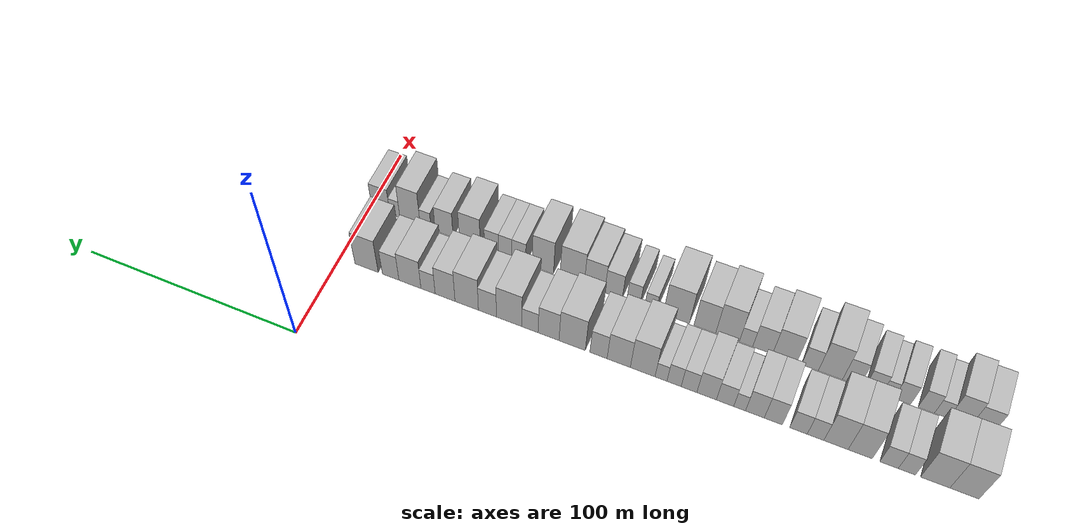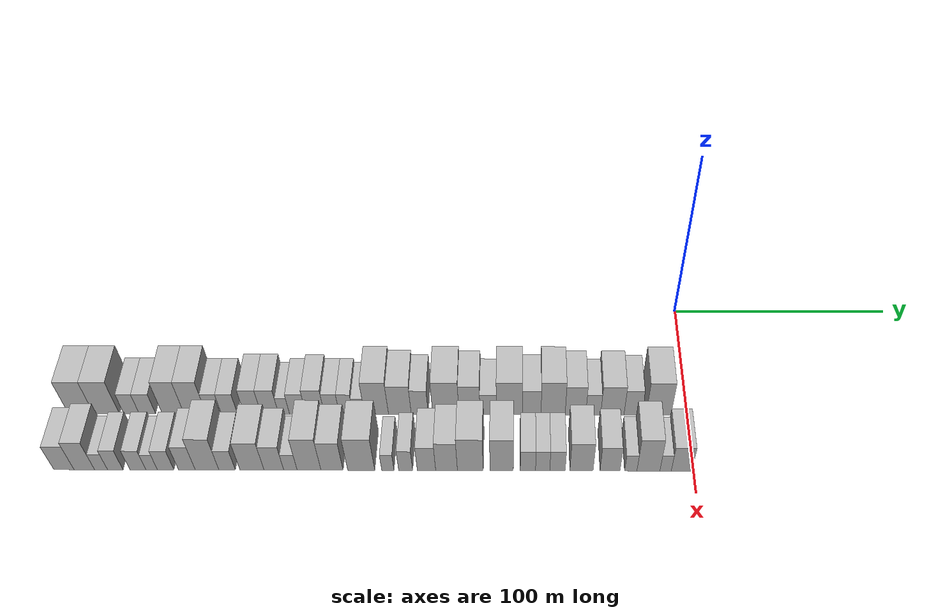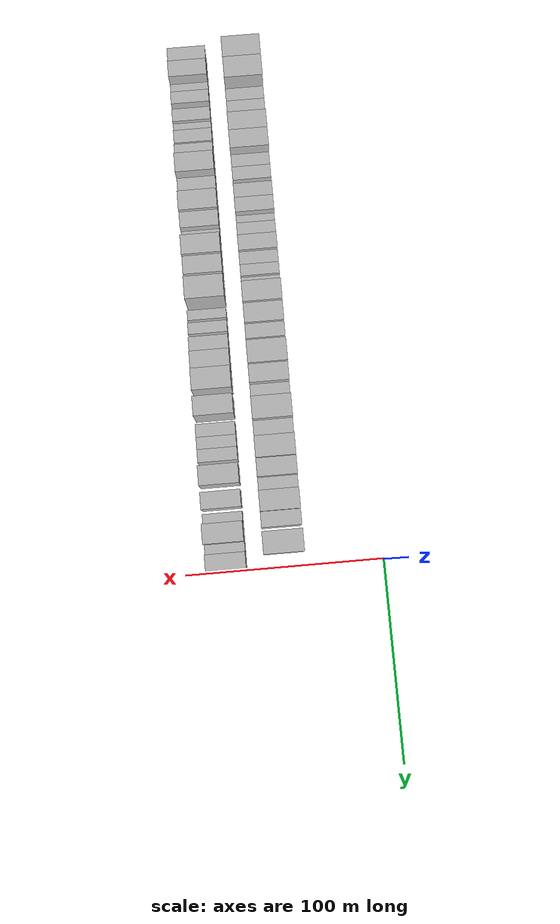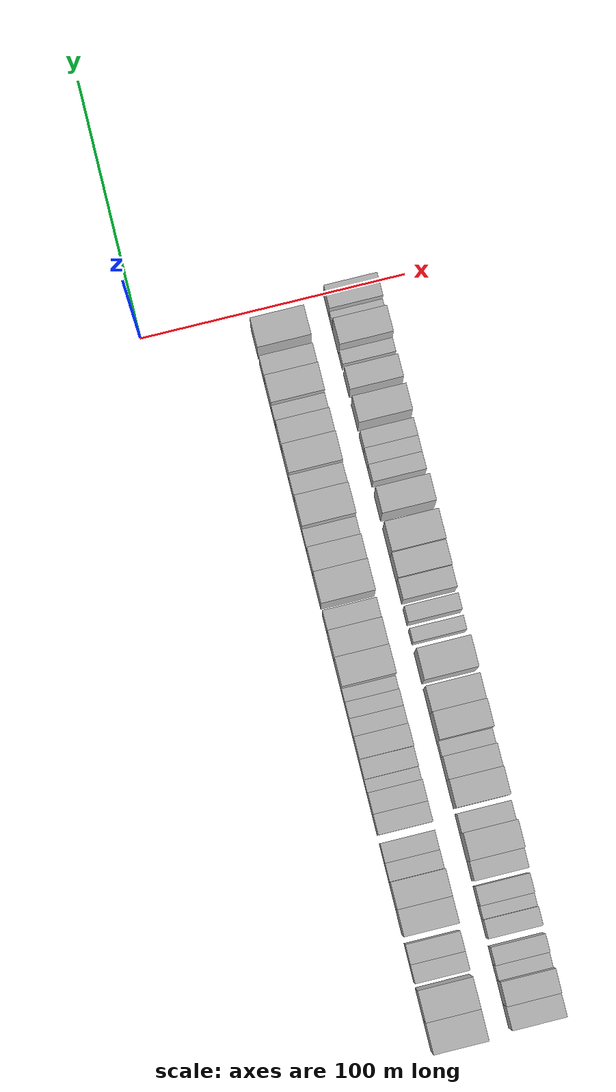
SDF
<sdf version="1.6">
 <world name="default">
  <model name="building_1">
   <static>1</static>
   <pose>50.0000 -270.3521 0 0.000000 0.000000 0.000000</pose>
   <link name="link">
    <pose>0 0 12.00 0 0 0</pose>
    <collision name="collision"><geometry><box><size>20.0000 11.2958 24.0000</size></box></geometry></collision>
    <visual name="visual">
     <cast_shadows>0</cast_shadows>
     <geometry><box><size>20.0000 11.2958 24.0000</size></box></geometry>
     <material>
      <script>
       <uri>model://HANNAS_wall/materials/scripts</uri>
       <uri>model://HANNAS_wall/materials/textures</uri>
       <name>vrc/HANNAS_wall</name>
      </script>
     </material>
    </visual>
   </link>
  </model>
  <model name="building_2">
   <static>1</static>
   <pose>50.0000 -258.9503 0 0.000000 0.000000 0.000000</pose>
   <link name="link">
    <pose>0 0 12.00 0 0 0</pose>
    <collision name="collision"><geometry><box><size>20.0000 11.5078 24.0000</size></box></geometry></collision>
    <visual name="visual">
     <cast_shadows>0</cast_shadows>
     <geometry><box><size>20.0000 11.5078 24.0000</size></box></geometry>
     <material>
      <script>
       <uri>model://HANNAS_wall/materials/scripts</uri>
       <uri>model://HANNAS_wall/materials/textures</uri>
       <name>vrc/HANNAS_wall</name>
      </script>
     </material>
    </visual>
   </link>
  </model>
  <model name="building_3">
   <static>1</static>
   <pose>50.0000 -247.7946 0 0.000000 0.000000 0.000000</pose>
   <link name="link">
    <pose>0 0 7.50 0 0 0</pose>
    <collision name="collision"><geometry><box><size>20.0000 6.8036 15.0000</size></box></geometry></collision>
    <visual name="visual">
     <cast_shadows>0</cast_shadows>
     <geometry><box><size>20.0000 6.8036 15.0000</size></box></geometry>
     <material>
      <script>
       <uri>model://HANNAS_wall/materials/scripts</uri>
       <uri>model://HANNAS_wall/materials/textures</uri>
       <name>vrc/HANNAS_wall</name>
      </script>
     </material>
    </visual>
   </link>
  </model>
  <model name="building_4">
   <static>1</static>
   <pose>50.0000 -240.7317 0 0.000000 0.000000 0.000000</pose>
   <link name="link">
    <pose>0 0 7.50 0 0 0</pose>
    <collision name="collision"><geometry><box><size>20.0000 7.3222 15.0000</size></box></geometry></collision>
    <visual name="visual">
     <cast_shadows>0</cast_shadows>
     <geometry><box><size>20.0000 7.3222 15.0000</size></box></geometry>
     <material>
      <script>
       <uri>model://HANNAS_wall/materials/scripts</uri>
       <uri>model://HANNAS_wall/materials/textures</uri>
       <name>vrc/HANNAS_wall</name>
      </script>
     </material>
    </visual>
   </link>
  </model>
  <model name="building_5">
   <static>1</static>
   <pose>50.0000 -229.2101 0 0.000000 0.000000 0.000000</pose>
   <link name="link">
    <pose>0 0 12.00 0 0 0</pose>
    <collision name="collision"><geometry><box><size>20.0000 9.7211 24.0000</size></box></geometry></collision>
    <visual name="visual">
     <cast_shadows>0</cast_shadows>
     <geometry><box><size>20.0000 9.7211 24.0000</size></box></geometry>
     <material>
      <script>
       <uri>model://HANNAS_wall/materials/scripts</uri>
       <uri>model://HANNAS_wall/materials/textures</uri>
       <name>vrc/HANNAS_wall</name>
      </script>
     </material>
    </visual>
   </link>
  </model>
  <model name="building_6">
   <static>1</static>
   <pose>50.0000 -219.4116 0 0.000000 0.000000 0.000000</pose>
   <link name="link">
    <pose>0 0 12.00 0 0 0</pose>
    <collision name="collision"><geometry><box><size>20.0000 9.8758 24.0000</size></box></geometry></collision>
    <visual name="visual">
     <cast_shadows>0</cast_shadows>
     <geometry><box><size>20.0000 9.8758 24.0000</size></box></geometry>
     <material>
      <script>
       <uri>model://HANNAS_wall/materials/scripts</uri>
       <uri>model://HANNAS_wall/materials/textures</uri>
       <name>vrc/HANNAS_wall</name>
      </script>
     </material>
    </visual>
   </link>
  </model>
  <model name="building_7">
   <static>1</static>
   <pose>50.0000 -211.0947 0 0.000000 0.000000 0.000000</pose>
   <link name="link">
    <pose>0 0 7.50 0 0 0</pose>
    <collision name="collision"><geometry><box><size>20.0000 6.7581 15.0000</size></box></geometry></collision>
    <visual name="visual">
     <cast_shadows>0</cast_shadows>
     <geometry><box><size>20.0000 6.7581 15.0000</size></box></geometry>
     <material>
      <script>
       <uri>model://HANNAS_wall/materials/scripts</uri>
       <uri>model://HANNAS_wall/materials/textures</uri>
       <name>vrc/HANNAS_wall</name>
      </script>
     </material>
    </visual>
   </link>
  </model>
  <model name="building_8">
   <static>1</static>
   <pose>50.0000 -204.1174 0 0.000000 0.000000 0.000000</pose>
   <link name="link">
    <pose>0 0 7.50 0 0 0</pose>
    <collision name="collision"><geometry><box><size>20.0000 7.1965 15.0000</size></box></geometry></collision>
    <visual name="visual">
     <cast_shadows>0</cast_shadows>
     <geometry><box><size>20.0000 7.1965 15.0000</size></box></geometry>
     <material>
      <script>
       <uri>model://HANNAS_wall/materials/scripts</uri>
       <uri>model://HANNAS_wall/materials/textures</uri>
       <name>vrc/HANNAS_wall</name>
      </script>
     </material>
    </visual>
   </link>
  </model>
  <model name="building_9">
   <static>1</static>
   <pose>50.0000 -193.7604 0 0.000000 0.000000 0.000000</pose>
   <link name="link">
    <pose>0 0 9.00 0 0 0</pose>
    <collision name="collision"><geometry><box><size>20.0000 7.5175 18.0000</size></box></geometry></collision>
    <visual name="visual">
     <cast_shadows>0</cast_shadows>
     <geometry><box><size>20.0000 7.5175 18.0000</size></box></geometry>
     <material>
      <script>
       <uri>model://HANNAS_wall/materials/scripts</uri>
       <uri>model://HANNAS_wall/materials/textures</uri>
       <name>vrc/HANNAS_wall</name>
      </script>
     </material>
    </visual>
   </link>
  </model>
  <model name="building_10">
   <static>1</static>
   <pose>50.0000 -186.0805 0 0.000000 0.000000 0.000000</pose>
   <link name="link">
    <pose>0 0 9.00 0 0 0</pose>
    <collision name="collision"><geometry><box><size>20.0000 7.8422 18.0000</size></box></geometry></collision>
    <visual name="visual">
     <cast_shadows>0</cast_shadows>
     <geometry><box><size>20.0000 7.8422 18.0000</size></box></geometry>
     <material>
      <script>
       <uri>model://HANNAS_wall/materials/scripts</uri>
       <uri>model://HANNAS_wall/materials/textures</uri>
       <name>vrc/HANNAS_wall</name>
      </script>
     </material>
    </visual>
   </link>
  </model>
  <model name="building_11">
   <static>1</static>
   <pose>50.0000 -179.7081 0 0.000000 0.000000 0.000000</pose>
   <link name="link">
    <pose>0 0 6.00 0 0 0</pose>
    <collision name="collision"><geometry><box><size>20.0000 4.9028 12.0000</size></box></geometry></collision>
    <visual name="visual">
     <cast_shadows>0</cast_shadows>
     <geometry><box><size>20.0000 4.9028 12.0000</size></box></geometry>
     <material>
      <script>
       <uri>model://HANNAS_wall/materials/scripts</uri>
       <uri>model://HANNAS_wall/materials/textures</uri>
       <name>vrc/HANNAS_wall</name>
      </script>
     </material>
    </visual>
   </link>
  </model>
  <model name="building_12">
   <static>1</static>
   <pose>50.0000 -173.6037 0 0.000000 0.000000 0.000000</pose>
   <link name="link">
    <pose>0 0 7.50 0 0 0</pose>
    <collision name="collision"><geometry><box><size>20.0000 7.3061 15.0000</size></box></geometry></collision>
    <visual name="visual">
     <cast_shadows>0</cast_shadows>
     <geometry><box><size>20.0000 7.3061 15.0000</size></box></geometry>
     <material>
      <script>
       <uri>model://HANNAS_wall/materials/scripts</uri>
       <uri>model://HANNAS_wall/materials/textures</uri>
       <name>vrc/HANNAS_wall</name>
      </script>
     </material>
    </visual>
   </link>
  </model>
  <model name="building_13">
   <static>1</static>
   <pose>50.0000 -165.8110 0 0.000000 0.000000 0.000000</pose>
   <link name="link">
    <pose>0 0 9.00 0 0 0</pose>
    <collision name="collision"><geometry><box><size>20.0000 8.2792 18.0000</size></box></geometry></collision>
    <visual name="visual">
     <cast_shadows>0</cast_shadows>
     <geometry><box><size>20.0000 8.2792 18.0000</size></box></geometry>
     <material>
      <script>
       <uri>model://HANNAS_wall/materials/scripts</uri>
       <uri>model://HANNAS_wall/materials/textures</uri>
       <name>vrc/HANNAS_wall</name>
      </script>
     </material>
    </visual>
   </link>
  </model>
  <model name="building_14">
   <static>1</static>
   <pose>50.0000 -158.3307 0 0.000000 0.000000 0.000000</pose>
   <link name="link">
    <pose>0 0 7.50 0 0 0</pose>
    <collision name="collision"><geometry><box><size>20.0000 6.6814 15.0000</size></box></geometry></collision>
    <visual name="visual">
     <cast_shadows>0</cast_shadows>
     <geometry><box><size>20.0000 6.6814 15.0000</size></box></geometry>
     <material>
      <script>
       <uri>model://HANNAS_wall/materials/scripts</uri>
       <uri>model://HANNAS_wall/materials/textures</uri>
       <name>vrc/HANNAS_wall</name>
      </script>
     </material>
    </visual>
   </link>
  </model>
  <model name="building_15">
   <static>1</static>
   <pose>50.0000 -151.9462 0 0.000000 0.000000 0.000000</pose>
   <link name="link">
    <pose>0 0 7.50 0 0 0</pose>
    <collision name="collision"><geometry><box><size>20.0000 6.0876 15.0000</size></box></geometry></collision>
    <visual name="visual">
     <cast_shadows>0</cast_shadows>
     <geometry><box><size>20.0000 6.0876 15.0000</size></box></geometry>
     <material>
      <script>
       <uri>model://HANNAS_wall/materials/scripts</uri>
       <uri>model://HANNAS_wall/materials/textures</uri>
       <name>vrc/HANNAS_wall</name>
      </script>
     </material>
    </visual>
   </link>
  </model>
  <model name="building_16">
   <static>1</static>
   <pose>50.0000 -146.3313 0 0.000000 0.000000 0.000000</pose>
   <link name="link">
    <pose>0 0 6.00 0 0 0</pose>
    <collision name="collision"><geometry><box><size>20.0000 5.1424 12.0000</size></box></geometry></collision>
    <visual name="visual">
     <cast_shadows>0</cast_shadows>
     <geometry><box><size>20.0000 5.1424 12.0000</size></box></geometry>
     <material>
      <script>
       <uri>model://HANNAS_wall/materials/scripts</uri>
       <uri>model://HANNAS_wall/materials/textures</uri>
       <name>vrc/HANNAS_wall</name>
      </script>
     </material>
    </visual>
   </link>
  </model>
  <model name="building_17">
   <static>1</static>
   <pose>50.0000 -138.4068 0 0.000000 0.000000 0.000000</pose>
   <link name="link">
    <pose>0 0 12.00 0 0 0</pose>
    <collision name="collision"><geometry><box><size>20.0000 10.7065 24.0000</size></box></geometry></collision>
    <visual name="visual">
     <cast_shadows>0</cast_shadows>
     <geometry><box><size>20.0000 10.7065 24.0000</size></box></geometry>
     <material>
      <script>
       <uri>model://HANNAS_wall/materials/scripts</uri>
       <uri>model://HANNAS_wall/materials/textures</uri>
       <name>vrc/HANNAS_wall</name>
      </script>
     </material>
    </visual>
   </link>
  </model>
  <model name="building_18">
   <static>1</static>
   <pose>50.0000 -127.9700 0 0.000000 0.000000 0.000000</pose>
   <link name="link">
    <pose>0 0 10.50 0 0 0</pose>
    <collision name="collision"><geometry><box><size>20.0000 10.1671 21.0000</size></box></geometry></collision>
    <visual name="visual">
     <cast_shadows>0</cast_shadows>
     <geometry><box><size>20.0000 10.1671 21.0000</size></box></geometry>
     <material>
      <script>
       <uri>model://HANNAS_wall/materials/scripts</uri>
       <uri>model://HANNAS_wall/materials/textures</uri>
       <name>vrc/HANNAS_wall</name>
      </script>
     </material>
    </visual>
   </link>
  </model>
  <model name="building_19">
   <static>1</static>
   <pose>50.0000 -119.1041 0 0.000000 0.000000 0.000000</pose>
   <link name="link">
    <pose>0 0 9.00 0 0 0</pose>
    <collision name="collision"><geometry><box><size>20.0000 7.5647 18.0000</size></box></geometry></collision>
    <visual name="visual">
     <cast_shadows>0</cast_shadows>
     <geometry><box><size>20.0000 7.5647 18.0000</size></box></geometry>
     <material>
      <script>
       <uri>model://HANNAS_wall/materials/scripts</uri>
       <uri>model://HANNAS_wall/materials/textures</uri>
       <name>vrc/HANNAS_wall</name>
      </script>
     </material>
    </visual>
   </link>
  </model>
  <model name="building_20">
   <static>1</static>
   <pose>50.0000 -107.4591 0 0.000000 0.000000 0.000000</pose>
   <link name="link">
    <pose>0 0 12.00 0 0 0</pose>
    <collision name="collision"><geometry><box><size>20.0000 11.7253 24.0000</size></box></geometry></collision>
    <visual name="visual">
     <cast_shadows>0</cast_shadows>
     <geometry><box><size>20.0000 11.7253 24.0000</size></box></geometry>
     <material>
      <script>
       <uri>model://HANNAS_wall/materials/scripts</uri>
       <uri>model://HANNAS_wall/materials/textures</uri>
       <name>vrc/HANNAS_wall</name>
      </script>
     </material>
    </visual>
   </link>
  </model>
  <model name="building_21">
   <static>1</static>
   <pose>50.0000 -96.9045 0 0.000000 0.000000 0.000000</pose>
   <link name="link">
    <pose>0 0 10.50 0 0 0</pose>
    <collision name="collision"><geometry><box><size>20.0000 9.3840 21.0000</size></box></geometry></collision>
    <visual name="visual">
     <cast_shadows>0</cast_shadows>
     <geometry><box><size>20.0000 9.3840 21.0000</size></box></geometry>
     <material>
      <script>
       <uri>model://HANNAS_wall/materials/scripts</uri>
       <uri>model://HANNAS_wall/materials/textures</uri>
       <name>vrc/HANNAS_wall</name>
      </script>
     </material>
    </visual>
   </link>
  </model>
  <model name="building_22">
   <static>1</static>
   <pose>50.0000 -88.5318 0 0.000000 0.000000 0.000000</pose>
   <link name="link">
    <pose>0 0 7.50 0 0 0</pose>
    <collision name="collision"><geometry><box><size>20.0000 7.3615 15.0000</size></box></geometry></collision>
    <visual name="visual">
     <cast_shadows>0</cast_shadows>
     <geometry><box><size>20.0000 7.3615 15.0000</size></box></geometry>
     <material>
      <script>
       <uri>model://HANNAS_wall/materials/scripts</uri>
       <uri>model://HANNAS_wall/materials/textures</uri>
       <name>vrc/HANNAS_wall</name>
      </script>
     </material>
    </visual>
   </link>
  </model>
  <model name="building_23">
   <static>1</static>
   <pose>50.0000 -79.0962 0 0.000000 0.000000 0.000000</pose>
   <link name="link">
    <pose>0 0 12.00 0 0 0</pose>
    <collision name="collision"><geometry><box><size>20.0000 11.5096 24.0000</size></box></geometry></collision>
    <visual name="visual">
     <cast_shadows>0</cast_shadows>
     <geometry><box><size>20.0000 11.5096 24.0000</size></box></geometry>
     <material>
      <script>
       <uri>model://HANNAS_wall/materials/scripts</uri>
       <uri>model://HANNAS_wall/materials/textures</uri>
       <name>vrc/HANNAS_wall</name>
      </script>
     </material>
    </visual>
   </link>
  </model>
  <model name="building_24">
   <static>1</static>
   <pose>50.0000 -69.2204 0 0.000000 0.000000 0.000000</pose>
   <link name="link">
    <pose>0 0 9.00 0 0 0</pose>
    <collision name="collision"><geometry><box><size>20.0000 8.2421 18.0000</size></box></geometry></collision>
    <visual name="visual">
     <cast_shadows>0</cast_shadows>
     <geometry><box><size>20.0000 8.2421 18.0000</size></box></geometry>
     <material>
      <script>
       <uri>model://HANNAS_wall/materials/scripts</uri>
       <uri>model://HANNAS_wall/materials/textures</uri>
       <name>vrc/HANNAS_wall</name>
      </script>
     </material>
    </visual>
   </link>
  </model>
  <model name="building_25">
   <static>1</static>
   <pose>50.0000 -59.6992 0 0.000000 0.000000 0.000000</pose>
   <link name="link">
    <pose>0 0 12.00 0 0 0</pose>
    <collision name="collision"><geometry><box><size>20.0000 10.8002 24.0000</size></box></geometry></collision>
    <visual name="visual">
     <cast_shadows>0</cast_shadows>
     <geometry><box><size>20.0000 10.8002 24.0000</size></box></geometry>
     <material>
      <script>
       <uri>model://HANNAS_wall/materials/scripts</uri>
       <uri>model://HANNAS_wall/materials/textures</uri>
       <name>vrc/HANNAS_wall</name>
      </script>
     </material>
    </visual>
   </link>
  </model>
  <model name="building_26">
   <static>1</static>
   <pose>50.0000 -49.6911 0 0.000000 0.000000 0.000000</pose>
   <link name="link">
    <pose>0 0 10.50 0 0 0</pose>
    <collision name="collision"><geometry><box><size>20.0000 9.2159 21.0000</size></box></geometry></collision>
    <visual name="visual">
     <cast_shadows>0</cast_shadows>
     <geometry><box><size>20.0000 9.2159 21.0000</size></box></geometry>
     <material>
      <script>
       <uri>model://HANNAS_wall/materials/scripts</uri>
       <uri>model://HANNAS_wall/materials/textures</uri>
       <name>vrc/HANNAS_wall</name>
      </script>
     </material>
    </visual>
   </link>
  </model>
  <model name="building_27">
   <static>1</static>
   <pose>50.0000 -41.7591 0 0.000000 0.000000 0.000000</pose>
   <link name="link">
    <pose>0 0 7.50 0 0 0</pose>
    <collision name="collision"><geometry><box><size>20.0000 6.6481 15.0000</size></box></geometry></collision>
    <visual name="visual">
     <cast_shadows>0</cast_shadows>
     <geometry><box><size>20.0000 6.6481 15.0000</size></box></geometry>
     <material>
      <script>
       <uri>model://HANNAS_wall/materials/scripts</uri>
       <uri>model://HANNAS_wall/materials/textures</uri>
       <name>vrc/HANNAS_wall</name>
      </script>
     </material>
    </visual>
   </link>
  </model>
  <model name="building_28">
   <static>1</static>
   <pose>50.0000 -33.2414 0 0.000000 0.000000 0.000000</pose>
   <link name="link">
    <pose>0 0 10.50 0 0 0</pose>
    <collision name="collision"><geometry><box><size>20.0000 10.3874 21.0000</size></box></geometry></collision>
    <visual name="visual">
     <cast_shadows>0</cast_shadows>
     <geometry><box><size>20.0000 10.3874 21.0000</size></box></geometry>
     <material>
      <script>
       <uri>model://HANNAS_wall/materials/scripts</uri>
       <uri>model://HANNAS_wall/materials/textures</uri>
       <name>vrc/HANNAS_wall</name>
      </script>
     </material>
    </visual>
   </link>
  </model>
  <model name="building_29">
   <static>1</static>
   <pose>50.0000 -24.1255 0 0.000000 0.000000 0.000000</pose>
   <link name="link">
    <pose>0 0 9.00 0 0 0</pose>
    <collision name="collision"><geometry><box><size>20.0000 7.8444 18.0000</size></box></geometry></collision>
    <visual name="visual">
     <cast_shadows>0</cast_shadows>
     <geometry><box><size>20.0000 7.8444 18.0000</size></box></geometry>
     <material>
      <script>
       <uri>model://HANNAS_wall/materials/scripts</uri>
       <uri>model://HANNAS_wall/materials/textures</uri>
       <name>vrc/HANNAS_wall</name>
      </script>
     </material>
    </visual>
   </link>
  </model>
  <model name="building_30">
   <static>1</static>
   <pose>50.0000 -12.6385 0 0.000000 0.000000 0.000000</pose>
   <link name="link">
    <pose>0 0 12.00 0 0 0</pose>
    <collision name="collision"><geometry><box><size>20.0000 11.1297 24.0000</size></box></geometry></collision>
    <visual name="visual">
     <cast_shadows>0</cast_shadows>
     <geometry><box><size>20.0000 11.1297 24.0000</size></box></geometry>
     <material>
      <script>
       <uri>model://HANNAS_wall/materials/scripts</uri>
       <uri>model://HANNAS_wall/materials/textures</uri>
       <name>vrc/HANNAS_wall</name>
      </script>
     </material>
    </visual>
   </link>
  </model>
  <model name="building_62">
   <static>1</static>
   <pose>79.0000 -270.6561 0 0.000000 0.000000 0.000000</pose>
   <link name="link">
    <pose>0 0 9.00 0 0 0</pose>
    <collision name="collision"><geometry><box><size>20.0000 8.6878 18.0000</size></box></geometry></collision>
    <visual name="visual">
     <cast_shadows>0</cast_shadows>
     <geometry><box><size>20.0000 8.6878 18.0000</size></box></geometry>
     <material>
      <script>
       <uri>model://HANNAS_wall/materials/scripts</uri>
       <uri>model://HANNAS_wall/materials/textures</uri>
       <name>vrc/HANNAS_wall</name>
      </script>
     </material>
    </visual>
   </link>
  </model>
  <model name="building_63">
   <static>1</static>
   <pose>79.0000 -261.8974 0 0.000000 0.000000 0.000000</pose>
   <link name="link">
    <pose>0 0 10.50 0 0 0</pose>
    <collision name="collision"><geometry><box><size>20.0000 8.8296 21.0000</size></box></geometry></collision>
    <visual name="visual">
     <cast_shadows>0</cast_shadows>
     <geometry><box><size>20.0000 8.8296 21.0000</size></box></geometry>
     <material>
      <script>
       <uri>model://HANNAS_wall/materials/scripts</uri>
       <uri>model://HANNAS_wall/materials/textures</uri>
       <name>vrc/HANNAS_wall</name>
      </script>
     </material>
    </visual>
   </link>
  </model>
  <model name="building_64">
   <static>1</static>
   <pose>79.0000 -254.6926 0 0.000000 0.000000 0.000000</pose>
   <link name="link">
    <pose>0 0 6.00 0 0 0</pose>
    <collision name="collision"><geometry><box><size>20.0000 5.5800 12.0000</size></box></geometry></collision>
    <visual name="visual">
     <cast_shadows>0</cast_shadows>
     <geometry><box><size>20.0000 5.5800 12.0000</size></box></geometry>
     <material>
      <script>
       <uri>model://HANNAS_wall/materials/scripts</uri>
       <uri>model://HANNAS_wall/materials/textures</uri>
       <name>vrc/HANNAS_wall</name>
      </script>
     </material>
    </visual>
   </link>
  </model>
  <model name="building_65">
   <static>1</static>
   <pose>79.0000 -248.5726 0 0.000000 0.000000 0.000000</pose>
   <link name="link">
    <pose>0 0 7.50 0 0 0</pose>
    <collision name="collision"><geometry><box><size>20.0000 6.6600 15.0000</size></box></geometry></collision>
    <visual name="visual">
     <cast_shadows>0</cast_shadows>
     <geometry><box><size>20.0000 6.6600 15.0000</size></box></geometry>
     <material>
      <script>
       <uri>model://HANNAS_wall/materials/scripts</uri>
       <uri>model://HANNAS_wall/materials/textures</uri>
       <name>vrc/HANNAS_wall</name>
      </script>
     </material>
    </visual>
   </link>
  </model>
  <model name="building_66">
   <static>1</static>
   <pose>79.0000 -238.7857 0 0.000000 0.000000 0.000000</pose>
   <link name="link">
    <pose>0 0 7.50 0 0 0</pose>
    <collision name="collision"><geometry><box><size>20.0000 6.9138 15.0000</size></box></geometry></collision>
    <visual name="visual">
     <cast_shadows>0</cast_shadows>
     <geometry><box><size>20.0000 6.9138 15.0000</size></box></geometry>
     <material>
      <script>
       <uri>model://HANNAS_wall/materials/scripts</uri>
       <uri>model://HANNAS_wall/materials/textures</uri>
       <name>vrc/HANNAS_wall</name>
      </script>
     </material>
    </visual>
   </link>
  </model>
  <model name="building_67">
   <static>1</static>
   <pose>79.0000 -232.8735 0 0.000000 0.000000 0.000000</pose>
   <link name="link">
    <pose>0 0 6.00 0 0 0</pose>
    <collision name="collision"><geometry><box><size>20.0000 4.9106 12.0000</size></box></geometry></collision>
    <visual name="visual">
     <cast_shadows>0</cast_shadows>
     <geometry><box><size>20.0000 4.9106 12.0000</size></box></geometry>
     <material>
      <script>
       <uri>model://HANNAS_wall/materials/scripts</uri>
       <uri>model://HANNAS_wall/materials/textures</uri>
       <name>vrc/HANNAS_wall</name>
      </script>
     </material>
    </visual>
   </link>
  </model>
  <model name="building_68">
   <static>1</static>
   <pose>79.0000 -226.8763 0 0.000000 0.000000 0.000000</pose>
   <link name="link">
    <pose>0 0 7.50 0 0 0</pose>
    <collision name="collision"><geometry><box><size>20.0000 7.0837 15.0000</size></box></geometry></collision>
    <visual name="visual">
     <cast_shadows>0</cast_shadows>
     <geometry><box><size>20.0000 7.0837 15.0000</size></box></geometry>
     <material>
      <script>
       <uri>model://HANNAS_wall/materials/scripts</uri>
       <uri>model://HANNAS_wall/materials/textures</uri>
       <name>vrc/HANNAS_wall</name>
      </script>
     </material>
    </visual>
   </link>
  </model>
  <model name="building_69">
   <static>1</static>
   <pose>79.0000 -217.7282 0 0.000000 0.000000 0.000000</pose>
   <link name="link">
    <pose>0 0 9.00 0 0 0</pose>
    <collision name="collision"><geometry><box><size>20.0000 7.2126 18.0000</size></box></geometry></collision>
    <visual name="visual">
     <cast_shadows>0</cast_shadows>
     <geometry><box><size>20.0000 7.2126 18.0000</size></box></geometry>
     <material>
      <script>
       <uri>model://HANNAS_wall/materials/scripts</uri>
       <uri>model://HANNAS_wall/materials/textures</uri>
       <name>vrc/HANNAS_wall</name>
      </script>
     </material>
    </visual>
   </link>
  </model>
  <model name="building_70">
   <static>1</static>
   <pose>79.0000 -209.0349 0 0.000000 0.000000 0.000000</pose>
   <link name="link">
    <pose>0 0 12.00 0 0 0</pose>
    <collision name="collision"><geometry><box><size>20.0000 10.1741 24.0000</size></box></geometry></collision>
    <visual name="visual">
     <cast_shadows>0</cast_shadows>
     <geometry><box><size>20.0000 10.1741 24.0000</size></box></geometry>
     <material>
      <script>
       <uri>model://HANNAS_wall/materials/scripts</uri>
       <uri>model://HANNAS_wall/materials/textures</uri>
       <name>vrc/HANNAS_wall</name>
      </script>
     </material>
    </visual>
   </link>
  </model>
  <model name="building_71">
   <static>1</static>
   <pose>79.0000 -200.4182 0 0.000000 0.000000 0.000000</pose>
   <link name="link">
    <pose>0 0 7.50 0 0 0</pose>
    <collision name="collision"><geometry><box><size>20.0000 7.0592 15.0000</size></box></geometry></collision>
    <visual name="visual">
     <cast_shadows>0</cast_shadows>
     <geometry><box><size>20.0000 7.0592 15.0000</size></box></geometry>
     <material>
      <script>
       <uri>model://HANNAS_wall/materials/scripts</uri>
       <uri>model://HANNAS_wall/materials/textures</uri>
       <name>vrc/HANNAS_wall</name>
      </script>
     </material>
    </visual>
   </link>
  </model>
  <model name="building_72">
   <static>1</static>
   <pose>79.0000 -189.7333 0 0.000000 0.000000 0.000000</pose>
   <link name="link">
    <pose>0 0 10.50 0 0 0</pose>
    <collision name="collision"><geometry><box><size>20.0000 10.3107 21.0000</size></box></geometry></collision>
    <visual name="visual">
     <cast_shadows>0</cast_shadows>
     <geometry><box><size>20.0000 10.3107 21.0000</size></box></geometry>
     <material>
      <script>
       <uri>model://HANNAS_wall/materials/scripts</uri>
       <uri>model://HANNAS_wall/materials/textures</uri>
       <name>vrc/HANNAS_wall</name>
      </script>
     </material>
    </visual>
   </link>
  </model>
  <model name="building_73">
   <static>1</static>
   <pose>79.0000 -180.3293 0 0.000000 0.000000 0.000000</pose>
   <link name="link">
    <pose>0 0 9.00 0 0 0</pose>
    <collision name="collision"><geometry><box><size>20.0000 8.4972 18.0000</size></box></geometry></collision>
    <visual name="visual">
     <cast_shadows>0</cast_shadows>
     <geometry><box><size>20.0000 8.4972 18.0000</size></box></geometry>
     <material>
      <script>
       <uri>model://HANNAS_wall/materials/scripts</uri>
       <uri>model://HANNAS_wall/materials/textures</uri>
       <name>vrc/HANNAS_wall</name>
      </script>
     </material>
    </visual>
   </link>
  </model>
  <model name="building_74">
   <static>1</static>
   <pose>79.0000 -173.1874 0 0.000000 0.000000 0.000000</pose>
   <link name="link">
    <pose>0 0 6.00 0 0 0</pose>
    <collision name="collision"><geometry><box><size>20.0000 5.7867 12.0000</size></box></geometry></collision>
    <visual name="visual">
     <cast_shadows>0</cast_shadows>
     <geometry><box><size>20.0000 5.7867 12.0000</size></box></geometry>
     <material>
      <script>
       <uri>model://HANNAS_wall/materials/scripts</uri>
       <uri>model://HANNAS_wall/materials/textures</uri>
       <name>vrc/HANNAS_wall</name>
      </script>
     </material>
    </visual>
   </link>
  </model>
  <model name="building_75">
   <static>1</static>
   <pose>79.0000 -165.1717 0 0.000000 0.000000 0.000000</pose>
   <link name="link">
    <pose>0 0 12.00 0 0 0</pose>
    <collision name="collision"><geometry><box><size>20.0000 10.2445 24.0000</size></box></geometry></collision>
    <visual name="visual">
     <cast_shadows>0</cast_shadows>
     <geometry><box><size>20.0000 10.2445 24.0000</size></box></geometry>
     <material>
      <script>
       <uri>model://HANNAS_wall/materials/scripts</uri>
       <uri>model://HANNAS_wall/materials/textures</uri>
       <name>vrc/HANNAS_wall</name>
      </script>
     </material>
    </visual>
   </link>
  </model>
  <model name="building_76">
   <static>1</static>
   <pose>79.0000 -155.2880 0 0.000000 0.000000 0.000000</pose>
   <link name="link">
    <pose>0 0 10.50 0 0 0</pose>
    <collision name="collision"><geometry><box><size>20.0000 9.5230 21.0000</size></box></geometry></collision>
    <visual name="visual">
     <cast_shadows>0</cast_shadows>
     <geometry><box><size>20.0000 9.5230 21.0000</size></box></geometry>
     <material>
      <script>
       <uri>model://HANNAS_wall/materials/scripts</uri>
       <uri>model://HANNAS_wall/materials/textures</uri>
       <name>vrc/HANNAS_wall</name>
      </script>
     </material>
    </visual>
   </link>
  </model>
  <model name="building_77">
   <static>1</static>
   <pose>79.0000 -142.7091 0 0.000000 0.000000 0.000000</pose>
   <link name="link">
    <pose>0 0 12.00 0 0 0</pose>
    <collision name="collision"><geometry><box><size>20.0000 11.6348 24.0000</size></box></geometry></collision>
    <visual name="visual">
     <cast_shadows>0</cast_shadows>
     <geometry><box><size>20.0000 11.6348 24.0000</size></box></geometry>
     <material>
      <script>
       <uri>model://HANNAS_wall/materials/scripts</uri>
       <uri>model://HANNAS_wall/materials/textures</uri>
       <name>vrc/HANNAS_wall</name>
      </script>
     </material>
    </visual>
   </link>
  </model>
  <model name="building_78">
   <static>1</static>
   <pose>79.0000 -131.2579 0 0.000000 0.000000 0.000000</pose>
   <link name="link">
    <pose>0 0 6.00 0 0 0</pose>
    <collision name="collision"><geometry><box><size>20.0000 5.2676 12.0000</size></box></geometry></collision>
    <visual name="visual">
     <cast_shadows>0</cast_shadows>
     <geometry><box><size>20.0000 5.2676 12.0000</size></box></geometry>
     <material>
      <script>
       <uri>model://HANNAS_wall/materials/scripts</uri>
       <uri>model://HANNAS_wall/materials/textures</uri>
       <name>vrc/HANNAS_wall</name>
      </script>
     </material>
    </visual>
   </link>
  </model>
  <model name="building_79">
   <static>1</static>
   <pose>79.0000 -123.6107 0 0.000000 0.000000 0.000000</pose>
   <link name="link">
    <pose>0 0 7.50 0 0 0</pose>
    <collision name="collision"><geometry><box><size>20.0000 6.0268 15.0000</size></box></geometry></collision>
    <visual name="visual">
     <cast_shadows>0</cast_shadows>
     <geometry><box><size>20.0000 6.0268 15.0000</size></box></geometry>
     <material>
      <script>
       <uri>model://HANNAS_wall/materials/scripts</uri>
       <uri>model://HANNAS_wall/materials/textures</uri>
       <name>vrc/HANNAS_wall</name>
      </script>
     </material>
    </visual>
   </link>
  </model>
  <model name="building_80">
   <static>1</static>
   <pose>79.0000 -114.6585 0 0.000000 0.000000 0.000000</pose>
   <link name="link">
    <pose>0 0 9.00 0 0 0</pose>
    <collision name="collision"><geometry><box><size>20.0000 7.8775 18.0000</size></box></geometry></collision>
    <visual name="visual">
     <cast_shadows>0</cast_shadows>
     <geometry><box><size>20.0000 7.8775 18.0000</size></box></geometry>
     <material>
      <script>
       <uri>model://HANNAS_wall/materials/scripts</uri>
       <uri>model://HANNAS_wall/materials/textures</uri>
       <name>vrc/HANNAS_wall</name>
      </script>
     </material>
    </visual>
   </link>
  </model>
  <model name="building_81">
   <static>1</static>
   <pose>79.0000 -106.0509 0 0.000000 0.000000 0.000000</pose>
   <link name="link">
    <pose>0 0 10.50 0 0 0</pose>
    <collision name="collision"><geometry><box><size>20.0000 9.3377 21.0000</size></box></geometry></collision>
    <visual name="visual">
     <cast_shadows>0</cast_shadows>
     <geometry><box><size>20.0000 9.3377 21.0000</size></box></geometry>
     <material>
      <script>
       <uri>model://HANNAS_wall/materials/scripts</uri>
       <uri>model://HANNAS_wall/materials/textures</uri>
       <name>vrc/HANNAS_wall</name>
      </script>
     </material>
    </visual>
   </link>
  </model>
  <model name="building_82">
   <static>1</static>
   <pose>79.0000 -95.8247 0 0.000000 0.000000 0.000000</pose>
   <link name="link">
    <pose>0 0 12.00 0 0 0</pose>
    <collision name="collision"><geometry><box><size>20.0000 11.1148 24.0000</size></box></geometry></collision>
    <visual name="visual">
     <cast_shadows>0</cast_shadows>
     <geometry><box><size>20.0000 11.1148 24.0000</size></box></geometry>
     <material>
      <script>
       <uri>model://HANNAS_wall/materials/scripts</uri>
       <uri>model://HANNAS_wall/materials/textures</uri>
       <name>vrc/HANNAS_wall</name>
      </script>
     </material>
    </visual>
   </link>
  </model>
  <model name="building_83">
   <static>1</static>
   <pose>79.0000 -82.3069 0 0.000000 0.000000 0.000000</pose>
   <link name="link">
    <pose>0 0 12.00 0 0 0</pose>
    <collision name="collision"><geometry><box><size>20.0000 9.9207 24.0000</size></box></geometry></collision>
    <visual name="visual">
     <cast_shadows>0</cast_shadows>
     <geometry><box><size>20.0000 9.9207 24.0000</size></box></geometry>
     <material>
      <script>
       <uri>model://HANNAS_wall/materials/scripts</uri>
       <uri>model://HANNAS_wall/materials/textures</uri>
       <name>vrc/HANNAS_wall</name>
      </script>
     </material>
    </visual>
   </link>
  </model>
  <model name="building_84">
   <static>1</static>
   <pose>79.0000 -71.0695 0 0.000000 0.000000 0.000000</pose>
   <link name="link">
    <pose>0 0 7.50 0 0 0</pose>
    <collision name="collision"><geometry><box><size>20.0000 6.5541 15.0000</size></box></geometry></collision>
    <visual name="visual">
     <cast_shadows>0</cast_shadows>
     <geometry><box><size>20.0000 6.5541 15.0000</size></box></geometry>
     <material>
      <script>
       <uri>model://HANNAS_wall/materials/scripts</uri>
       <uri>model://HANNAS_wall/materials/textures</uri>
       <name>vrc/HANNAS_wall</name>
      </script>
     </material>
    </visual>
   </link>
  </model>
  <model name="building_85">
   <static>1</static>
   <pose>79.0000 -64.7242 0 0.000000 0.000000 0.000000</pose>
   <link name="link">
    <pose>0 0 7.50 0 0 0</pose>
    <collision name="collision"><geometry><box><size>20.0000 6.1364 15.0000</size></box></geometry></collision>
    <visual name="visual">
     <cast_shadows>0</cast_shadows>
     <geometry><box><size>20.0000 6.1364 15.0000</size></box></geometry>
     <material>
      <script>
       <uri>model://HANNAS_wall/materials/scripts</uri>
       <uri>model://HANNAS_wall/materials/textures</uri>
       <name>vrc/HANNAS_wall</name>
      </script>
     </material>
    </visual>
   </link>
  </model>
  <model name="building_86">
   <static>1</static>
   <pose>79.0000 -58.3399 0 0.000000 0.000000 0.000000</pose>
   <link name="link">
    <pose>0 0 7.50 0 0 0</pose>
    <collision name="collision"><geometry><box><size>20.0000 6.6323 15.0000</size></box></geometry></collision>
    <visual name="visual">
     <cast_shadows>0</cast_shadows>
     <geometry><box><size>20.0000 6.6323 15.0000</size></box></geometry>
     <material>
      <script>
       <uri>model://HANNAS_wall/materials/scripts</uri>
       <uri>model://HANNAS_wall/materials/textures</uri>
       <name>vrc/HANNAS_wall</name>
      </script>
     </material>
    </visual>
   </link>
  </model>
  <model name="building_87">
   <static>1</static>
   <pose>79.0000 -48.0432 0 0.000000 0.000000 0.000000</pose>
   <link name="link">
    <pose>0 0 10.50 0 0 0</pose>
    <collision name="collision"><geometry><box><size>20.0000 9.9612 21.0000</size></box></geometry></collision>
    <visual name="visual">
     <cast_shadows>0</cast_shadows>
     <geometry><box><size>20.0000 9.9612 21.0000</size></box></geometry>
     <material>
      <script>
       <uri>model://HANNAS_wall/materials/scripts</uri>
       <uri>model://HANNAS_wall/materials/textures</uri>
       <name>vrc/HANNAS_wall</name>
      </script>
     </material>
    </visual>
   </link>
  </model>
  <model name="building_88">
   <static>1</static>
   <pose>79.0000 -35.7702 0 0.000000 0.000000 0.000000</pose>
   <link name="link">
    <pose>0 0 9.00 0 0 0</pose>
    <collision name="collision"><geometry><box><size>20.0000 8.5848 18.0000</size></box></geometry></collision>
    <visual name="visual">
     <cast_shadows>0</cast_shadows>
     <geometry><box><size>20.0000 8.5848 18.0000</size></box></geometry>
     <material>
      <script>
       <uri>model://HANNAS_wall/materials/scripts</uri>
       <uri>model://HANNAS_wall/materials/textures</uri>
       <name>vrc/HANNAS_wall</name>
      </script>
     </material>
    </visual>
   </link>
  </model>
  <model name="building_89">
   <static>1</static>
   <pose>79.0000 -26.8504 0 0.000000 0.000000 0.000000</pose>
   <link name="link">
    <pose>0 0 6.00 0 0 0</pose>
    <collision name="collision"><geometry><box><size>20.0000 5.2548 12.0000</size></box></geometry></collision>
    <visual name="visual">
     <cast_shadows>0</cast_shadows>
     <geometry><box><size>20.0000 5.2548 12.0000</size></box></geometry>
     <material>
      <script>
       <uri>model://HANNAS_wall/materials/scripts</uri>
       <uri>model://HANNAS_wall/materials/textures</uri>
       <name>vrc/HANNAS_wall</name>
      </script>
     </material>
    </visual>
   </link>
  </model>
  <model name="building_90">
   <static>1</static>
   <pose>79.0000 -19.2862 0 0.000000 0.000000 0.000000</pose>
   <link name="link">
    <pose>0 0 12.00 0 0 0</pose>
    <collision name="collision"><geometry><box><size>20.0000 9.8735 24.0000</size></box></geometry></collision>
    <visual name="visual">
     <cast_shadows>0</cast_shadows>
     <geometry><box><size>20.0000 9.8735 24.0000</size></box></geometry>
     <material>
      <script>
       <uri>model://HANNAS_wall/materials/scripts</uri>
       <uri>model://HANNAS_wall/materials/textures</uri>
       <name>vrc/HANNAS_wall</name>
      </script>
     </material>
    </visual>
   </link>
  </model>
  <model name="building_91">
   <static>1</static>
   <pose>79.0000 -11.9008 0 0.000000 0.000000 0.000000</pose>
   <link name="link">
    <pose>0 0 6.00 0 0 0</pose>
    <collision name="collision"><geometry><box><size>20.0000 4.8973 12.0000</size></box></geometry></collision>
    <visual name="visual">
     <cast_shadows>0</cast_shadows>
     <geometry><box><size>20.0000 4.8973 12.0000</size></box></geometry>
     <material>
      <script>
       <uri>model://HANNAS_wall/materials/scripts</uri>
       <uri>model://HANNAS_wall/materials/textures</uri>
       <name>vrc/HANNAS_wall</name>
      </script>
     </material>
    </visual>
   </link>
  </model>
  <model name="building_92">
   <static>1</static>
   <pose>79.0000 -5.0426 0 0.000000 0.000000 0.000000</pose>
   <link name="link">
    <pose>0 0 9.00 0 0 0</pose>
    <collision name="collision"><geometry><box><size>20.0000 8.8192 18.0000</size></box></geometry></collision>
    <visual name="visual">
     <cast_shadows>0</cast_shadows>
     <geometry><box><size>20.0000 8.8192 18.0000</size></box></geometry>
     <material>
      <script>
       <uri>model://HANNAS_wall/materials/scripts</uri>
       <uri>model://HANNAS_wall/materials/textures</uri>
       <name>vrc/HANNAS_wall</name>
      </script>
     </material>
    </visual>
   </link>
  </model>
 </world>
</sdf>
